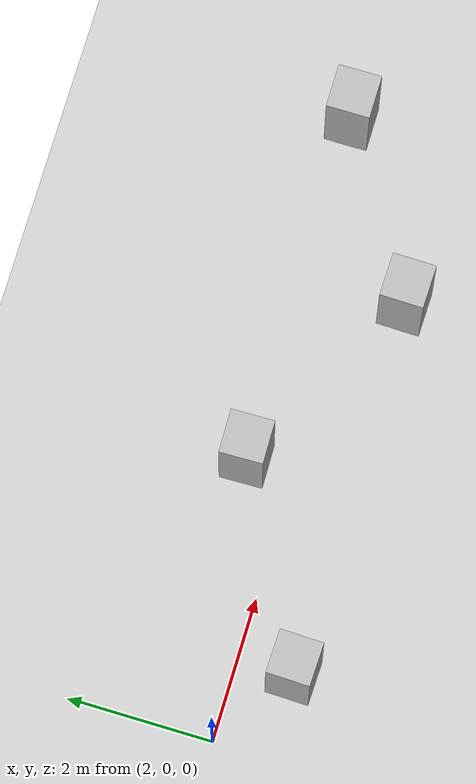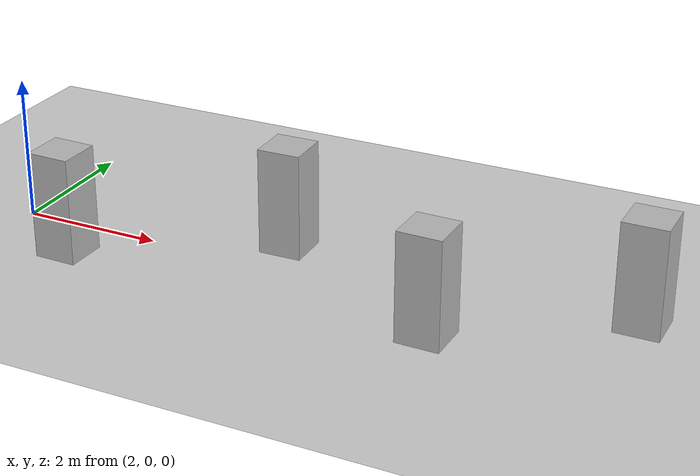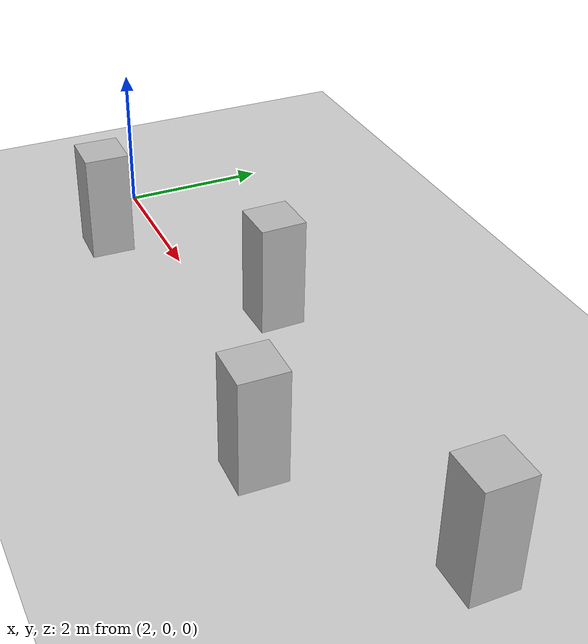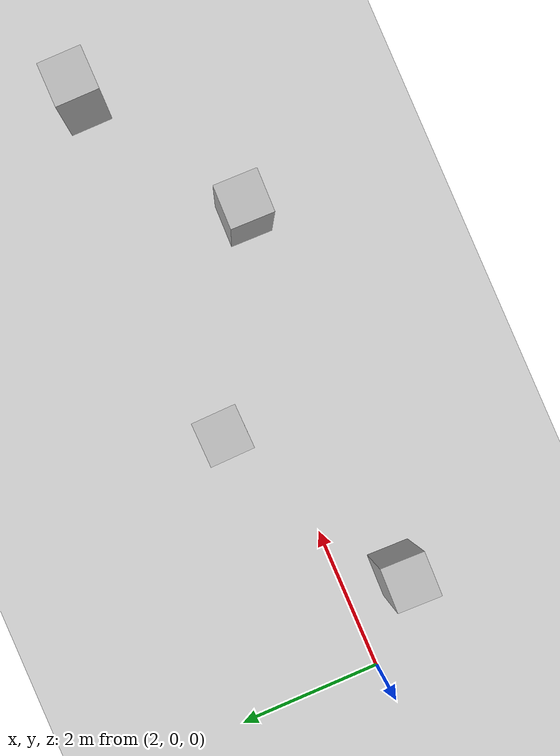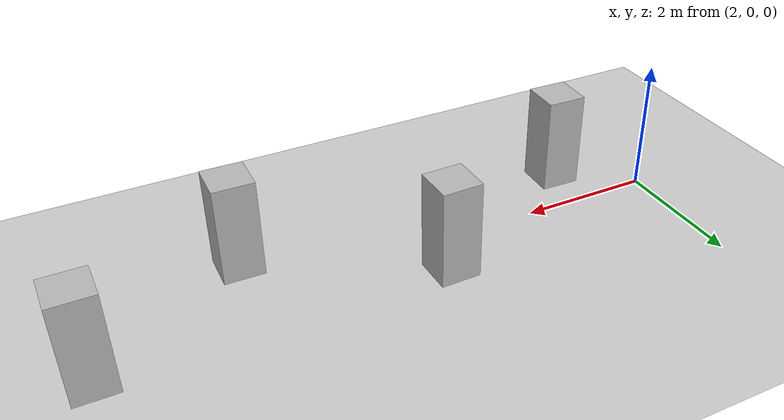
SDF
<?xml version="1.0"?>
<sdf version="1.6">
  <world name="v2-04f-static-s4803">
    <gravity>0 0 -9.81</gravity>
    <physics name="v2_deterministic" type="ode">
      <max_step_size>0.002</max_step_size>
      <real_time_update_rate>500</real_time_update_rate>
    </physics>
    <include>
      <uri>model://sun</uri>
    </include>
    <include>
      <uri>model://ground_plane</uri>
    </include>
    <model name="pillar-1">
      <static>true</static>
      <pose>3.132237643 -0.770312138 0.750000000 0 0 -0.027445425</pose>
      <link name="link">
        <collision name="collision">
          <geometry>
            <box>
              <size>0.600000 0.600000 1.500000</size>
            </box>
          </geometry>
        </collision>
        <visual name="visual">
          <geometry>
            <box>
              <size>0.600000 0.600000 1.500000</size>
            </box>
          </geometry>
        </visual>
      </link>
    </model>
    <model name="pillar-2">
      <static>true</static>
      <pose>5.748565980 0.660288452 0.750000000 0 0 0.018882251</pose>
      <link name="link">
        <collision name="collision">
          <geometry>
            <box>
              <size>0.600000 0.600000 1.500000</size>
            </box>
          </geometry>
        </collision>
        <visual name="visual">
          <geometry>
            <box>
              <size>0.600000 0.600000 1.500000</size>
            </box>
          </geometry>
        </visual>
      </link>
    </model>
    <model name="pillar-3">
      <static>true</static>
      <pose>8.371852356 -0.760235860 0.750000000 0 0 -0.020524983</pose>
      <link name="link">
        <collision name="collision">
          <geometry>
            <box>
              <size>0.600000 0.600000 1.500000</size>
            </box>
          </geometry>
        </collision>
        <visual name="visual">
          <geometry>
            <box>
              <size>0.600000 0.600000 1.500000</size>
            </box>
          </geometry>
        </visual>
      </link>
    </model>
    <model name="pillar-4">
      <static>true</static>
      <pose>10.660041088 0.652591087 0.750000000 0 0 0.000667039</pose>
      <link name="link">
        <collision name="collision">
          <geometry>
            <box>
              <size>0.600000 0.600000 1.500000</size>
            </box>
          </geometry>
        </collision>
        <visual name="visual">
          <geometry>
            <box>
              <size>0.600000 0.600000 1.500000</size>
            </box>
          </geometry>
        </visual>
      </link>
    </model>
  </world>
</sdf>
